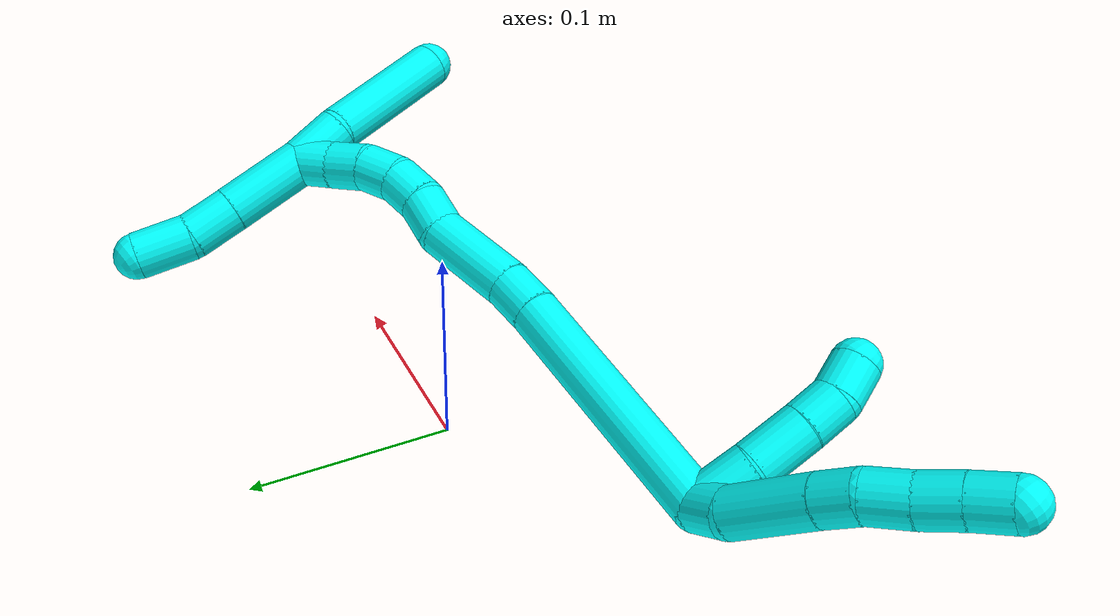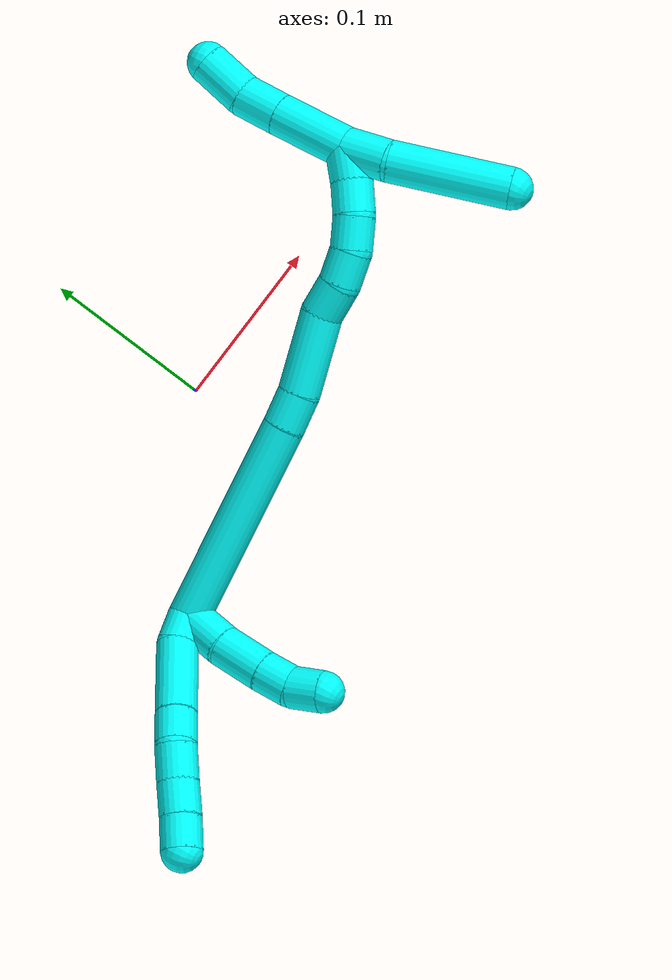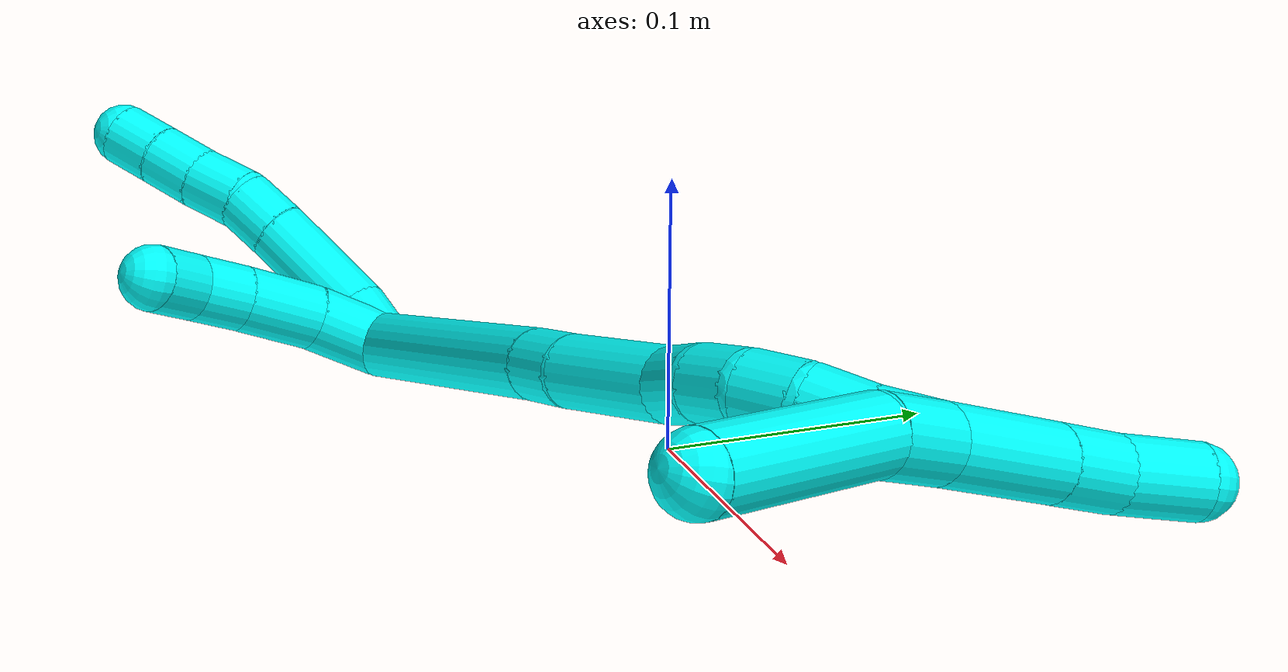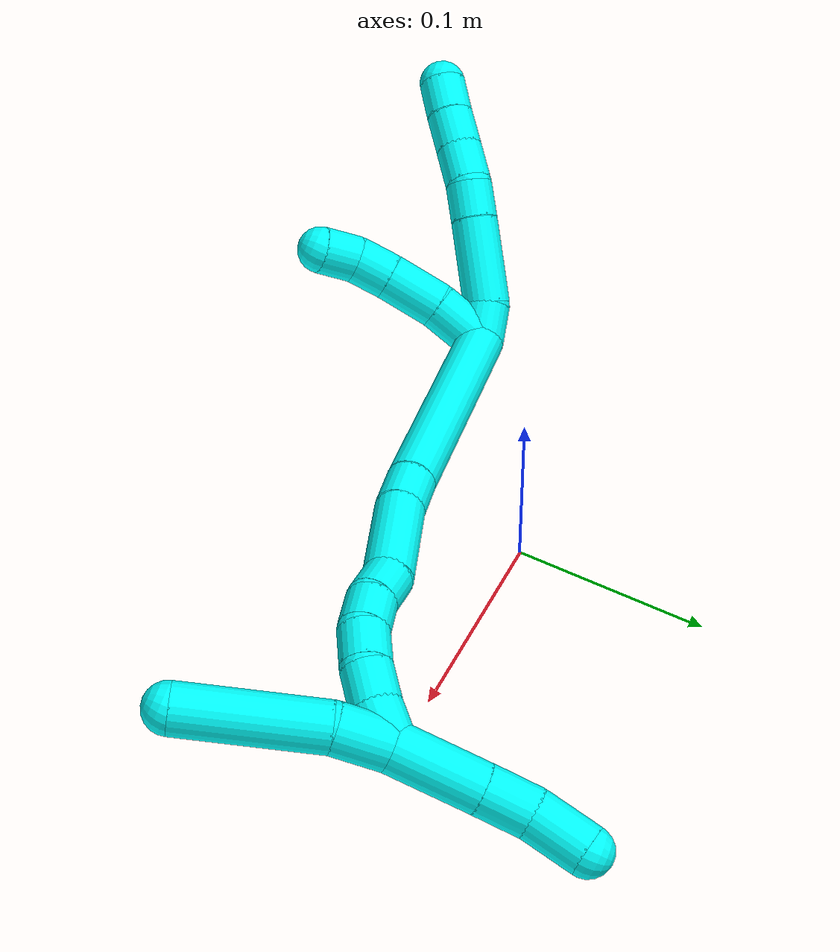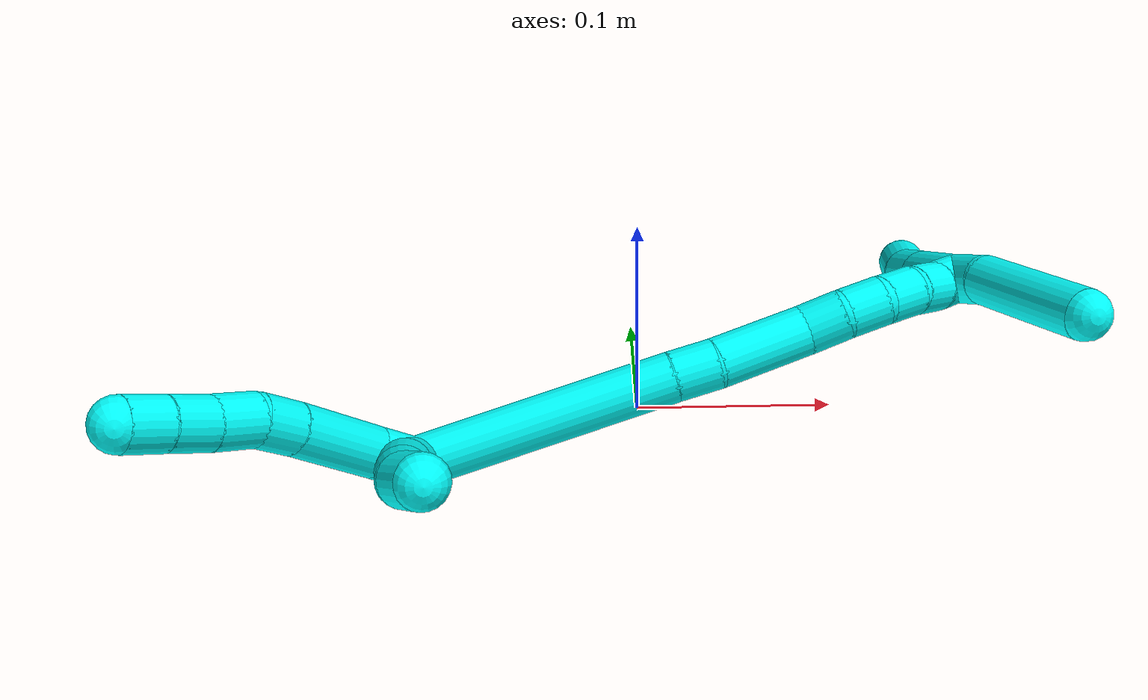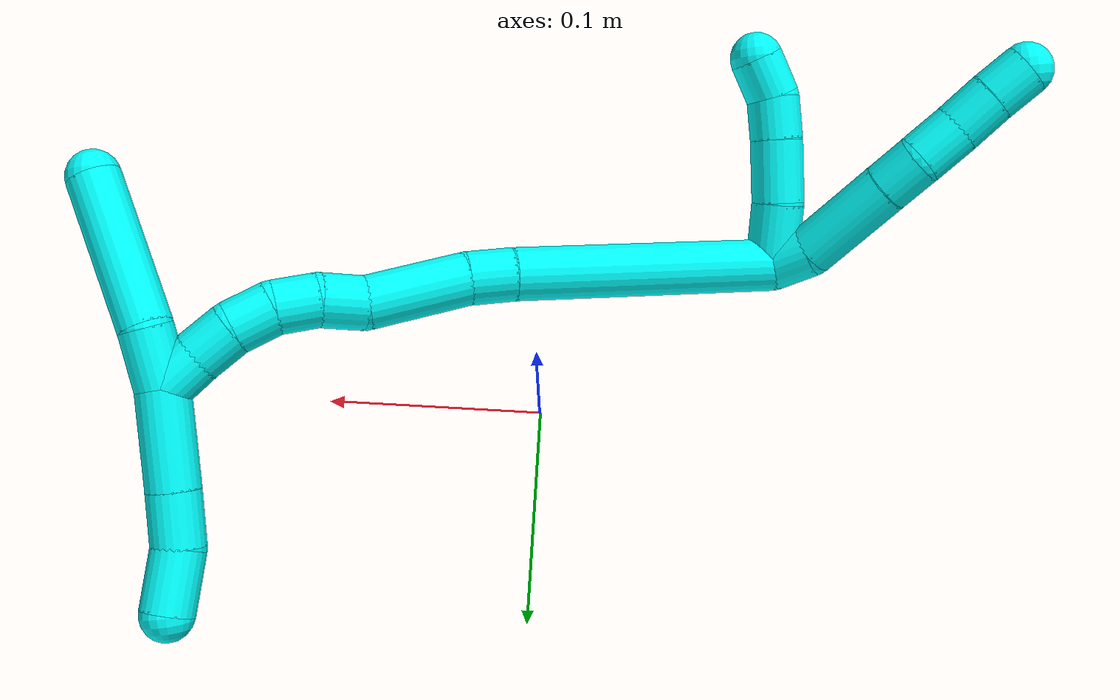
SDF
<sdf version="1.7">
 <world name="default">
  <model name="3">
   <static>0</static>
   <link name="3">
    <collision name="collision-cylinder-e_1_2_8">
     <pose>-0.009497 0.002555 0.002246 -0.84968 -1.22678 0.616632</pose>
     <geometry><cylinder><radius>0.0125</radius><length>0.020176</length></cylinder></geometry>
     <surface>
      <friction><ode><mu>1.16</mu><mu2>1.16</mu2><slip1>0</slip1><slip2>0</slip2></ode></friction>
      <contact><ode><kp>1e+06</kp><kd>1</kd><max_vel>0</max_vel><min_depth>0.001</min_depth></ode></contact>
     </surface>
    </collision>
    <visual name="visual-cylinder-e_1_2_8">
     <pose>-0.009497 0.002555 0.002246 -0.84968 -1.22678 0.616632</pose>
     <geometry><cylinder><radius>0.0125</radius><length>0.020176</length></cylinder></geometry>
     <material><ambient>0.003922 1 0.996078 1</ambient></material>
    </visual>
    <collision name="collision-cylinder-e_2_8_9">
     <pose>-0.037769 0.011627 0.016655 -0.491841 -0.93705 0.252715</pose>
     <geometry><cylinder><radius>0.0125</radius><length>0.046601</length></cylinder></geometry>
     <surface>
      <friction><ode><mu>1.16</mu><mu2>1.16</mu2><slip1>0</slip1><slip2>0</slip2></ode></friction>
      <contact><ode><kp>1e+06</kp><kd>1</kd><max_vel>0</max_vel><min_depth>0.001</min_depth></ode></contact>
     </surface>
    </collision>
    <visual name="visual-cylinder-e_2_8_9">
     <pose>-0.037769 0.011627 0.016655 -0.491841 -0.93705 0.252715</pose>
     <geometry><cylinder><radius>0.0125</radius><length>0.046601</length></cylinder></geometry>
     <material><ambient>0.003922 1 0.996078 1</ambient></material>
    </visual>
    <collision name="collision-cylinder-e_3_9_10">
     <pose>-0.064732 0.020508 0.034068 -0.423231 -0.957745 0.222154</pose>
     <geometry><cylinder><radius>0.0125</radius><length>0.02002</length></cylinder></geometry>
     <surface>
      <friction><ode><mu>1.16</mu><mu2>1.16</mu2><slip1>0</slip1><slip2>0</slip2></ode></friction>
      <contact><ode><kp>1e+06</kp><kd>1</kd><max_vel>0</max_vel><min_depth>0.001</min_depth></ode></contact>
     </surface>
    </collision>
    <visual name="visual-cylinder-e_3_9_10">
     <pose>-0.064732 0.020508 0.034068 -0.423231 -0.957745 0.222154</pose>
     <geometry><cylinder><radius>0.0125</radius><length>0.02002</length></cylinder></geometry>
     <material><ambient>0.003922 1 0.996078 1</ambient></material>
    </visual>
    <collision name="collision-cylinder-e_4_10_11">
     <pose>-0.082156 0.02249 0.045315 0.063866 -0.994089 -0.034654</pose>
     <geometry><cylinder><radius>0.0125</radius><length>0.022037</length></cylinder></geometry>
     <surface>
      <friction><ode><mu>1.16</mu><mu2>1.16</mu2><slip1>0</slip1><slip2>0</slip2></ode></friction>
      <contact><ode><kp>1e+06</kp><kd>1</kd><max_vel>0</max_vel><min_depth>0.001</min_depth></ode></contact>
     </surface>
    </collision>
    <visual name="visual-cylinder-e_4_10_11">
     <pose>-0.082156 0.02249 0.045315 0.063866 -0.994089 -0.034654</pose>
     <geometry><cylinder><radius>0.0125</radius><length>0.022037</length></cylinder></geometry>
     <material><ambient>0.003922 1 0.996078 1</ambient></material>
    </visual>
    <collision name="collision-cylinder-e_5_11_12">
     <pose>-0.099985 0.022523 0.057339 -0.068882 -0.957984 0.035783</pose>
     <geometry><cylinder><radius>0.0125</radius><length>0.021009</length></cylinder></geometry>
     <surface>
      <friction><ode><mu>1.16</mu><mu2>1.16</mu2><slip1>0</slip1><slip2>0</slip2></ode></friction>
      <contact><ode><kp>1e+06</kp><kd>1</kd><max_vel>0</max_vel><min_depth>0.001</min_depth></ode></contact>
     </surface>
    </collision>
    <visual name="visual-cylinder-e_5_11_12">
     <pose>-0.099985 0.022523 0.057339 -0.068882 -0.957984 0.035783</pose>
     <geometry><cylinder><radius>0.0125</radius><length>0.021009</length></cylinder></geometry>
     <material><ambient>0.003922 1 0.996078 1</ambient></material>
    </visual>
    <collision name="collision-cylinder-e_6_12_6">
     <pose>-0.117107 0.023104 0.068735 -0.030817 -1.00875 0.017012</pose>
     <geometry><cylinder><radius>0.0125</radius><length>0.020158</length></cylinder></geometry>
     <surface>
      <friction><ode><mu>1.16</mu><mu2>1.16</mu2><slip1>0</slip1><slip2>0</slip2></ode></friction>
      <contact><ode><kp>1e+06</kp><kd>1</kd><max_vel>0</max_vel><min_depth>0.001</min_depth></ode></contact>
     </surface>
    </collision>
    <visual name="visual-cylinder-e_6_12_6">
     <pose>-0.117107 0.023104 0.068735 -0.030817 -1.00875 0.017012</pose>
     <geometry><cylinder><radius>0.0125</radius><length>0.020158</length></cylinder></geometry>
     <material><ambient>0.003922 1 0.996078 1</ambient></material>
    </visual>
    <collision name="collision-cylinder-e_1_2_13">
     <pose>-0.003284 0.002134 0.014459 -0.146528 -0.221019 0.016288</pose>
     <geometry><cylinder><radius>0.0125</radius><length>0.02996</length></cylinder></geometry>
     <surface>
      <friction><ode><mu>1.16</mu><mu2>1.16</mu2><slip1>0</slip1><slip2>0</slip2></ode></friction>
      <contact><ode><kp>1e+06</kp><kd>1</kd><max_vel>0</max_vel><min_depth>0.001</min_depth></ode></contact>
     </surface>
    </collision>
    <visual name="visual-cylinder-e_1_2_13">
     <pose>-0.003284 0.002134 0.014459 -0.146528 -0.221019 0.016288</pose>
     <geometry><cylinder><radius>0.0125</radius><length>0.02996</length></cylinder></geometry>
     <material><ambient>0.003922 1 0.996078 1</ambient></material>
    </visual>
    <collision name="collision-cylinder-e_2_13_14">
     <pose>-0.008012 0.005271 0.043764 -0.067498 -0.096736 0.003269</pose>
     <geometry><cylinder><radius>0.0125</radius><length>0.0299</length></cylinder></geometry>
     <surface>
      <friction><ode><mu>1.16</mu><mu2>1.16</mu2><slip1>0</slip1><slip2>0</slip2></ode></friction>
      <contact><ode><kp>1e+06</kp><kd>1</kd><max_vel>0</max_vel><min_depth>0.001</min_depth></ode></contact>
     </surface>
    </collision>
    <visual name="visual-cylinder-e_2_13_14">
     <pose>-0.008012 0.005271 0.043764 -0.067498 -0.096736 0.003269</pose>
     <geometry><cylinder><radius>0.0125</radius><length>0.0299</length></cylinder></geometry>
     <material><ambient>0.003922 1 0.996078 1</ambient></material>
    </visual>
    <collision name="collision-cylinder-e_3_14_15">
     <pose>-0.009822 0.006829 0.068658 -0.055046 -0.036408 0.001002</pose>
     <geometry><cylinder><radius>0.0125</radius><length>0.020139</length></cylinder></geometry>
     <surface>
      <friction><ode><mu>1.16</mu><mu2>1.16</mu2><slip1>0</slip1><slip2>0</slip2></ode></friction>
      <contact><ode><kp>1e+06</kp><kd>1</kd><max_vel>0</max_vel><min_depth>0.001</min_depth></ode></contact>
     </surface>
    </collision>
    <visual name="visual-cylinder-e_3_14_15">
     <pose>-0.009822 0.006829 0.068658 -0.055046 -0.036408 0.001002</pose>
     <geometry><cylinder><radius>0.0125</radius><length>0.020139</length></cylinder></geometry>
     <material><ambient>0.003922 1 0.996078 1</ambient></material>
    </visual>
    <collision name="collision-cylinder-e_4_15_5">
     <pose>-0.00742 0.00903 0.088173 -0.172345 0.280569 -0.024396</pose>
     <geometry><cylinder><radius>0.0125</radius><length>0.020001</length></cylinder></geometry>
     <surface>
      <friction><ode><mu>1.16</mu><mu2>1.16</mu2><slip1>0</slip1><slip2>0</slip2></ode></friction>
      <contact><ode><kp>1e+06</kp><kd>1</kd><max_vel>0</max_vel><min_depth>0.001</min_depth></ode></contact>
     </surface>
    </collision>
    <visual name="visual-cylinder-e_4_15_5">
     <pose>-0.00742 0.00903 0.088173 -0.172345 0.280569 -0.024396</pose>
     <geometry><cylinder><radius>0.0125</radius><length>0.020001</length></cylinder></geometry>
     <material><ambient>0.003922 1 0.996078 1</ambient></material>
    </visual>
    <collision name="collision-cylinder-e_1_2_16">
     <pose>0.058891 0.025031 0.005067 -1.37108 1.16161 -0.98527</pose>
     <geometry><cylinder><radius>0.0125</radius><length>0.12838</length></cylinder></geometry>
     <surface>
      <friction><ode><mu>1.16</mu><mu2>1.16</mu2><slip1>0</slip1><slip2>0</slip2></ode></friction>
      <contact><ode><kp>1e+06</kp><kd>1</kd><max_vel>0</max_vel><min_depth>0.001</min_depth></ode></contact>
     </surface>
    </collision>
    <visual name="visual-cylinder-e_1_2_16">
     <pose>0.058891 0.025031 0.005067 -1.37108 1.16161 -0.98527</pose>
     <geometry><cylinder><radius>0.0125</radius><length>0.12838</length></cylinder></geometry>
     <material><ambient>0.003922 1 0.996078 1</ambient></material>
    </visual>
    <collision name="collision-cylinder-e_2_16_17">
     <pose>0.127927 0.053965 0.010422 -1.49714 1.20272 -1.13489</pose>
     <geometry><cylinder><radius>0.0125</radius><length>0.021748</length></cylinder></geometry>
     <surface>
      <friction><ode><mu>1.16</mu><mu2>1.16</mu2><slip1>0</slip1><slip2>0</slip2></ode></friction>
      <contact><ode><kp>1e+06</kp><kd>1</kd><max_vel>0</max_vel><min_depth>0.001</min_depth></ode></contact>
     </surface>
    </collision>
    <visual name="visual-cylinder-e_2_16_17">
     <pose>0.127927 0.053965 0.010422 -1.49714 1.20272 -1.13489</pose>
     <geometry><cylinder><radius>0.0125</radius><length>0.021748</length></cylinder></geometry>
     <material><ambient>0.003922 1 0.996078 1</ambient></material>
    </visual>
    <collision name="collision-cylinder-e_3_17_18">
     <pose>0.160202 0.06718 0.007963 -1.85754 1.15734 -1.4362</pose>
     <geometry><cylinder><radius>0.0125</radius><length>0.048331</length></cylinder></geometry>
     <surface>
      <friction><ode><mu>1.16</mu><mu2>1.16</mu2><slip1>0</slip1><slip2>0</slip2></ode></friction>
      <contact><ode><kp>1e+06</kp><kd>1</kd><max_vel>0</max_vel><min_depth>0.001</min_depth></ode></contact>
     </surface>
    </collision>
    <visual name="visual-cylinder-e_3_17_18">
     <pose>0.160202 0.06718 0.007963 -1.85754 1.15734 -1.4362</pose>
     <geometry><cylinder><radius>0.0125</radius><length>0.048331</length></cylinder></geometry>
     <material><ambient>0.003922 1 0.996078 1</ambient></material>
    </visual>
    <collision name="collision-cylinder-e_4_18_19">
     <pose>0.191516 0.081395 0.007129 -1.19907 1.05049 -0.754268</pose>
     <geometry><cylinder><radius>0.0125</radius><length>0.021171</length></cylinder></geometry>
     <surface>
      <friction><ode><mu>1.16</mu><mu2>1.16</mu2><slip1>0</slip1><slip2>0</slip2></ode></friction>
      <contact><ode><kp>1e+06</kp><kd>1</kd><max_vel>0</max_vel><min_depth>0.001</min_depth></ode></contact>
     </surface>
    </collision>
    <visual name="visual-cylinder-e_4_18_19">
     <pose>0.191516 0.081395 0.007129 -1.19907 1.05049 -0.754268</pose>
     <geometry><cylinder><radius>0.0125</radius><length>0.021171</length></cylinder></geometry>
     <material><ambient>0.003922 1 0.996078 1</ambient></material>
    </visual>
    <collision name="collision-cylinder-e_5_19_20">
     <pose>0.210041 0.090246 0.008513 -1.70357 1.16778 -1.2932</pose>
     <geometry><cylinder><radius>0.0125</radius><length>0.020309</length></cylinder></geometry>
     <surface>
      <friction><ode><mu>1.16</mu><mu2>1.16</mu2><slip1>0</slip1><slip2>0</slip2></ode></friction>
      <contact><ode><kp>1e+06</kp><kd>1</kd><max_vel>0</max_vel><min_depth>0.001</min_depth></ode></contact>
     </surface>
    </collision>
    <visual name="visual-cylinder-e_5_19_20">
     <pose>0.210041 0.090246 0.008513 -1.70357 1.16778 -1.2932</pose>
     <geometry><cylinder><radius>0.0125</radius><length>0.020309</length></cylinder></geometry>
     <material><ambient>0.003922 1 0.996078 1</ambient></material>
    </visual>
    <collision name="collision-cylinder-e_6_20_21">
     <pose>0.228346 0.09709 0.004605 -2.43311 1.10982 -2.06571</pose>
     <geometry><cylinder><radius>0.0125</radius><length>0.020018</length></cylinder></geometry>
     <surface>
      <friction><ode><mu>1.16</mu><mu2>1.16</mu2><slip1>0</slip1><slip2>0</slip2></ode></friction>
      <contact><ode><kp>1e+06</kp><kd>1</kd><max_vel>0</max_vel><min_depth>0.001</min_depth></ode></contact>
     </surface>
    </collision>
    <visual name="visual-cylinder-e_6_20_21">
     <pose>0.228346 0.09709 0.004605 -2.43311 1.10982 -2.06571</pose>
     <geometry><cylinder><radius>0.0125</radius><length>0.020018</length></cylinder></geometry>
     <material><ambient>0.003922 1 0.996078 1</ambient></material>
    </visual>
    <collision name="collision-cylinder-e_7_21_22">
     <pose>0.245701 0.101302 -0.004073 -2.89837 0.994032 -2.69838</pose>
     <geometry><cylinder><radius>0.0125</radius><length>0.020019</length></cylinder></geometry>
     <surface>
      <friction><ode><mu>1.16</mu><mu2>1.16</mu2><slip1>0</slip1><slip2>0</slip2></ode></friction>
      <contact><ode><kp>1e+06</kp><kd>1</kd><max_vel>0</max_vel><min_depth>0.001</min_depth></ode></contact>
     </surface>
    </collision>
    <visual name="visual-cylinder-e_7_21_22">
     <pose>0.245701 0.101302 -0.004073 -2.89837 0.994032 -2.69838</pose>
     <geometry><cylinder><radius>0.0125</radius><length>0.020019</length></cylinder></geometry>
     <material><ambient>0.003922 1 0.996078 1</ambient></material>
    </visual>
    <collision name="collision-cylinder-e_8_22_1">
     <pose>0.261897 0.104817 -0.015242 -2.78293 0.894083 -2.41857</pose>
     <geometry><cylinder><radius>0.0125</radius><length>0.020024</length></cylinder></geometry>
     <surface>
      <friction><ode><mu>1.16</mu><mu2>1.16</mu2><slip1>0</slip1><slip2>0</slip2></ode></friction>
      <contact><ode><kp>1e+06</kp><kd>1</kd><max_vel>0</max_vel><min_depth>0.001</min_depth></ode></contact>
     </surface>
    </collision>
    <visual name="visual-cylinder-e_8_22_1">
     <pose>0.261897 0.104817 -0.015242 -2.78293 0.894083 -2.41857</pose>
     <geometry><cylinder><radius>0.0125</radius><length>0.020024</length></cylinder></geometry>
     <material><ambient>0.003922 1 0.996078 1</ambient></material>
    </visual>
    <collision name="collision-cylinder-e_1_1_23">
     <pose>0.270317 0.106765 -0.043713 3.1304 0.027162 2.35992</pose>
     <geometry><cylinder><radius>0.0125</radius><length>0.04522</length></cylinder></geometry>
     <surface>
      <friction><ode><mu>1.16</mu><mu2>1.16</mu2><slip1>0</slip1><slip2>0</slip2></ode></friction>
      <contact><ode><kp>1e+06</kp><kd>1</kd><max_vel>0</max_vel><min_depth>0.001</min_depth></ode></contact>
     </surface>
    </collision>
    <visual name="visual-cylinder-e_1_1_23">
     <pose>0.270317 0.106765 -0.043713 3.1304 0.027162 2.35992</pose>
     <geometry><cylinder><radius>0.0125</radius><length>0.04522</length></cylinder></geometry>
     <material><ambient>0.003922 1 0.996078 1</ambient></material>
    </visual>
    <collision name="collision-cylinder-e_2_23_24">
     <pose>0.271478 0.106419 -0.079012 3.13426 0.043054 2.80424</pose>
     <geometry><cylinder><radius>0.0125</radius><length>0.025422</length></cylinder></geometry>
     <surface>
      <friction><ode><mu>1.16</mu><mu2>1.16</mu2><slip1>0</slip1><slip2>0</slip2></ode></friction>
      <contact><ode><kp>1e+06</kp><kd>1</kd><max_vel>0</max_vel><min_depth>0.001</min_depth></ode></contact>
     </surface>
    </collision>
    <visual name="visual-cylinder-e_2_23_24">
     <pose>0.271478 0.106419 -0.079012 3.13426 0.043054 2.80424</pose>
     <geometry><cylinder><radius>0.0125</radius><length>0.025422</length></cylinder></geometry>
     <material><ambient>0.003922 1 0.996078 1</ambient></material>
    </visual>
    <collision name="collision-cylinder-e_3_24_4">
     <pose>0.275776 0.108569 -0.105724 -2.98289 0.258414 -2.04318</pose>
     <geometry><cylinder><radius>0.0125</radius><length>0.029359</length></cylinder></geometry>
     <surface>
      <friction><ode><mu>1.16</mu><mu2>1.16</mu2><slip1>0</slip1><slip2>0</slip2></ode></friction>
      <contact><ode><kp>1e+06</kp><kd>1</kd><max_vel>0</max_vel><min_depth>0.001</min_depth></ode></contact>
     </surface>
    </collision>
    <visual name="visual-cylinder-e_3_24_4">
     <pose>0.275776 0.108569 -0.105724 -2.98289 0.258414 -2.04318</pose>
     <geometry><cylinder><radius>0.0125</radius><length>0.029359</length></cylinder></geometry>
     <material><ambient>0.003922 1 0.996078 1</ambient></material>
    </visual>
    <collision name="collision-cylinder-e_1_1_25">
     <pose>0.271483 0.10778 -0.00755 -0.056077 0.130309 -0.00366</pose>
     <geometry><cylinder><radius>0.0125</radius><length>0.0274</length></cylinder></geometry>
     <surface>
      <friction><ode><mu>1.16</mu><mu2>1.16</mu2><slip1>0</slip1><slip2>0</slip2></ode></friction>
      <contact><ode><kp>1e+06</kp><kd>1</kd><max_vel>0</max_vel><min_depth>0.001</min_depth></ode></contact>
     </surface>
    </collision>
    <visual name="visual-cylinder-e_1_1_25">
     <pose>0.271483 0.10778 -0.00755 -0.056077 0.130309 -0.00366</pose>
     <geometry><cylinder><radius>0.0125</radius><length>0.0274</length></cylinder></geometry>
     <material><ambient>0.003922 1 0.996078 1</ambient></material>
    </visual>
    <collision name="collision-cylinder-e_2_25_3">
     <pose>0.282517 0.103746 0.040784 0.137027 0.257754 0.017785</pose>
     <geometry><cylinder><radius>0.0125</radius><length>0.0726</length></cylinder></geometry>
     <surface>
      <friction><ode><mu>1.16</mu><mu2>1.16</mu2><slip1>0</slip1><slip2>0</slip2></ode></friction>
      <contact><ode><kp>1e+06</kp><kd>1</kd><max_vel>0</max_vel><min_depth>0.001</min_depth></ode></contact>
     </surface>
    </collision>
    <visual name="visual-cylinder-e_2_25_3">
     <pose>0.282517 0.103746 0.040784 0.137027 0.257754 0.017785</pose>
     <geometry><cylinder><radius>0.0125</radius><length>0.0726</length></cylinder></geometry>
     <material><ambient>0.003922 1 0.996078 1</ambient></material>
    </visual>
    <collision name="collision-sphere-3">
     <pose>0.29177 0.098951 0.075556 0 -0 0</pose>
     <geometry><sphere><radius>0.0125</radius></sphere></geometry>
     <surface>
      <friction><ode><mu>1.16</mu><mu2>1.16</mu2><slip1>0</slip1><slip2>0</slip2></ode></friction>
      <contact><ode><kp>1e+06</kp><kd>1</kd><max_vel>0</max_vel><min_depth>0.001</min_depth></ode></contact>
     </surface>
    </collision>
    <visual name="visual-sphere-3">
     <pose>0.29177 0.098951 0.075556 0 -0 0</pose>
     <geometry><sphere><radius>0.0125</radius></sphere></geometry>
     <material><ambient>0.003922 1 0.996078 1</ambient></material>
    </visual>
    <collision name="collision-sphere-25">
     <pose>0.273263 0.108541 0.006012 0 -0 0</pose>
     <geometry><sphere><radius>0.0125</radius></sphere></geometry>
     <surface>
      <friction><ode><mu>1.16</mu><mu2>1.16</mu2><slip1>0</slip1><slip2>0</slip2></ode></friction>
      <contact><ode><kp>1e+06</kp><kd>1</kd><max_vel>0</max_vel><min_depth>0.001</min_depth></ode></contact>
     </surface>
    </collision>
    <visual name="visual-sphere-25">
     <pose>0.273263 0.108541 0.006012 0 -0 0</pose>
     <geometry><sphere><radius>0.0125</radius></sphere></geometry>
     <material><ambient>0.003922 1 0.996078 1</ambient></material>
    </visual>
    <collision name="collision-sphere-4">
     <pose>0.279528 0.110812 -0.119738 0 -0 0</pose>
     <geometry><sphere><radius>0.0125</radius></sphere></geometry>
     <surface>
      <friction><ode><mu>1.16</mu><mu2>1.16</mu2><slip1>0</slip1><slip2>0</slip2></ode></friction>
      <contact><ode><kp>1e+06</kp><kd>1</kd><max_vel>0</max_vel><min_depth>0.001</min_depth></ode></contact>
     </surface>
    </collision>
    <visual name="visual-sphere-4">
     <pose>0.279528 0.110812 -0.119738 0 -0 0</pose>
     <geometry><sphere><radius>0.0125</radius></sphere></geometry>
     <material><ambient>0.003922 1 0.996078 1</ambient></material>
    </visual>
    <collision name="collision-sphere-24">
     <pose>0.272025 0.106326 -0.09171 0 -0 0</pose>
     <geometry><sphere><radius>0.0125</radius></sphere></geometry>
     <surface>
      <friction><ode><mu>1.16</mu><mu2>1.16</mu2><slip1>0</slip1><slip2>0</slip2></ode></friction>
      <contact><ode><kp>1e+06</kp><kd>1</kd><max_vel>0</max_vel><min_depth>0.001</min_depth></ode></contact>
     </surface>
    </collision>
    <visual name="visual-sphere-24">
     <pose>0.272025 0.106326 -0.09171 0 -0 0</pose>
     <geometry><sphere><radius>0.0125</radius></sphere></geometry>
     <material><ambient>0.003922 1 0.996078 1</ambient></material>
    </visual>
    <collision name="collision-sphere-23">
     <pose>0.270931 0.106512 -0.066313 0 -0 0</pose>
     <geometry><sphere><radius>0.0125</radius></sphere></geometry>
     <surface>
      <friction><ode><mu>1.16</mu><mu2>1.16</mu2><slip1>0</slip1><slip2>0</slip2></ode></friction>
      <contact><ode><kp>1e+06</kp><kd>1</kd><max_vel>0</max_vel><min_depth>0.001</min_depth></ode></contact>
     </surface>
    </collision>
    <visual name="visual-sphere-23">
     <pose>0.270931 0.106512 -0.066313 0 -0 0</pose>
     <geometry><sphere><radius>0.0125</radius></sphere></geometry>
     <material><ambient>0.003922 1 0.996078 1</ambient></material>
    </visual>
    <collision name="collision-sphere-1">
     <pose>0.269703 0.107018 -0.021113 0 -0 0</pose>
     <geometry><sphere><radius>0.0125</radius></sphere></geometry>
     <surface>
      <friction><ode><mu>1.16</mu><mu2>1.16</mu2><slip1>0</slip1><slip2>0</slip2></ode></friction>
      <contact><ode><kp>1e+06</kp><kd>1</kd><max_vel>0</max_vel><min_depth>0.001</min_depth></ode></contact>
     </surface>
    </collision>
    <visual name="visual-sphere-1">
     <pose>0.269703 0.107018 -0.021113 0 -0 0</pose>
     <geometry><sphere><radius>0.0125</radius></sphere></geometry>
     <material><ambient>0.003922 1 0.996078 1</ambient></material>
    </visual>
    <collision name="collision-sphere-22">
     <pose>0.254091 0.102616 -0.009371 0 -0 0</pose>
     <geometry><sphere><radius>0.0125</radius></sphere></geometry>
     <surface>
      <friction><ode><mu>1.16</mu><mu2>1.16</mu2><slip1>0</slip1><slip2>0</slip2></ode></friction>
      <contact><ode><kp>1e+06</kp><kd>1</kd><max_vel>0</max_vel><min_depth>0.001</min_depth></ode></contact>
     </surface>
    </collision>
    <visual name="visual-sphere-22">
     <pose>0.254091 0.102616 -0.009371 0 -0 0</pose>
     <geometry><sphere><radius>0.0125</radius></sphere></geometry>
     <material><ambient>0.003922 1 0.996078 1</ambient></material>
    </visual>
    <collision name="collision-sphere-21">
     <pose>0.237311 0.099987 0.001225 0 -0 0</pose>
     <geometry><sphere><radius>0.0125</radius></sphere></geometry>
     <surface>
      <friction><ode><mu>1.16</mu><mu2>1.16</mu2><slip1>0</slip1><slip2>0</slip2></ode></friction>
      <contact><ode><kp>1e+06</kp><kd>1</kd><max_vel>0</max_vel><min_depth>0.001</min_depth></ode></contact>
     </surface>
    </collision>
    <visual name="visual-sphere-21">
     <pose>0.237311 0.099987 0.001225 0 -0 0</pose>
     <geometry><sphere><radius>0.0125</radius></sphere></geometry>
     <material><ambient>0.003922 1 0.996078 1</ambient></material>
    </visual>
    <collision name="collision-sphere-12">
     <pose>-0.108578 0.022938 0.063366 0 -0 0</pose>
     <geometry><sphere><radius>0.0125</radius></sphere></geometry>
     <surface>
      <friction><ode><mu>1.16</mu><mu2>1.16</mu2><slip1>0</slip1><slip2>0</slip2></ode></friction>
      <contact><ode><kp>1e+06</kp><kd>1</kd><max_vel>0</max_vel><min_depth>0.001</min_depth></ode></contact>
     </surface>
    </collision>
    <visual name="visual-sphere-12">
     <pose>-0.108578 0.022938 0.063366 0 -0 0</pose>
     <geometry><sphere><radius>0.0125</radius></sphere></geometry>
     <material><ambient>0.003922 1 0.996078 1</ambient></material>
    </visual>
    <collision name="collision-sphere-11">
     <pose>-0.091392 0.022107 0.051311 0 -0 0</pose>
     <geometry><sphere><radius>0.0125</radius></sphere></geometry>
     <surface>
      <friction><ode><mu>1.16</mu><mu2>1.16</mu2><slip1>0</slip1><slip2>0</slip2></ode></friction>
      <contact><ode><kp>1e+06</kp><kd>1</kd><max_vel>0</max_vel><min_depth>0.001</min_depth></ode></contact>
     </surface>
    </collision>
    <visual name="visual-sphere-11">
     <pose>-0.091392 0.022107 0.051311 0 -0 0</pose>
     <geometry><sphere><radius>0.0125</radius></sphere></geometry>
     <material><ambient>0.003922 1 0.996078 1</ambient></material>
    </visual>
    <collision name="collision-sphere-10">
     <pose>-0.07292 0.022874 0.03932 0 -0 0</pose>
     <geometry><sphere><radius>0.0125</radius></sphere></geometry>
     <surface>
      <friction><ode><mu>1.16</mu><mu2>1.16</mu2><slip1>0</slip1><slip2>0</slip2></ode></friction>
      <contact><ode><kp>1e+06</kp><kd>1</kd><max_vel>0</max_vel><min_depth>0.001</min_depth></ode></contact>
     </surface>
    </collision>
    <visual name="visual-sphere-10">
     <pose>-0.07292 0.022874 0.03932 0 -0 0</pose>
     <geometry><sphere><radius>0.0125</radius></sphere></geometry>
     <material><ambient>0.003922 1 0.996078 1</ambient></material>
    </visual>
    <collision name="collision-sphere-9">
     <pose>-0.056545 0.018143 0.028817 0 -0 0</pose>
     <geometry><sphere><radius>0.0125</radius></sphere></geometry>
     <surface>
      <friction><ode><mu>1.16</mu><mu2>1.16</mu2><slip1>0</slip1><slip2>0</slip2></ode></friction>
      <contact><ode><kp>1e+06</kp><kd>1</kd><max_vel>0</max_vel><min_depth>0.001</min_depth></ode></contact>
     </surface>
    </collision>
    <visual name="visual-sphere-9">
     <pose>-0.056545 0.018143 0.028817 0 -0 0</pose>
     <geometry><sphere><radius>0.0125</radius></sphere></geometry>
     <material><ambient>0.003922 1 0.996078 1</ambient></material>
    </visual>
    <collision name="collision-sphere-2">
     <geometry><sphere><radius>0.0125</radius></sphere></geometry>
     <surface>
      <friction><ode><mu>1.16</mu><mu2>1.16</mu2><slip1>0</slip1><slip2>0</slip2></ode></friction>
      <contact><ode><kp>1e+06</kp><kd>1</kd><max_vel>0</max_vel><min_depth>0.001</min_depth></ode></contact>
     </surface>
    </collision>
    <visual name="visual-sphere-2">
     <geometry><sphere><radius>0.0125</radius></sphere></geometry>
     <material><ambient>0.003922 1 0.996078 1</ambient></material>
    </visual>
    <collision name="collision-sphere-19">
     <pose>0.2007 0.086298 0.00904 0 -0 0</pose>
     <geometry><sphere><radius>0.0125</radius></sphere></geometry>
     <surface>
      <friction><ode><mu>1.16</mu><mu2>1.16</mu2><slip1>0</slip1><slip2>0</slip2></ode></friction>
      <contact><ode><kp>1e+06</kp><kd>1</kd><max_vel>0</max_vel><min_depth>0.001</min_depth></ode></contact>
     </surface>
    </collision>
    <visual name="visual-sphere-19">
     <pose>0.2007 0.086298 0.00904 0 -0 0</pose>
     <geometry><sphere><radius>0.0125</radius></sphere></geometry>
     <material><ambient>0.003922 1 0.996078 1</ambient></material>
    </visual>
    <collision name="collision-sphere-8">
     <pose>-0.018994 0.005111 0.004493 0 -0 0</pose>
     <geometry><sphere><radius>0.0125</radius></sphere></geometry>
     <surface>
      <friction><ode><mu>1.16</mu><mu2>1.16</mu2><slip1>0</slip1><slip2>0</slip2></ode></friction>
      <contact><ode><kp>1e+06</kp><kd>1</kd><max_vel>0</max_vel><min_depth>0.001</min_depth></ode></contact>
     </surface>
    </collision>
    <visual name="visual-sphere-8">
     <pose>-0.018994 0.005111 0.004493 0 -0 0</pose>
     <geometry><sphere><radius>0.0125</radius></sphere></geometry>
     <material><ambient>0.003922 1 0.996078 1</ambient></material>
    </visual>
    <collision name="collision-sphere-6">
     <pose>-0.125635 0.023269 0.074103 0 -0 0</pose>
     <geometry><sphere><radius>0.0125</radius></sphere></geometry>
     <surface>
      <friction><ode><mu>1.16</mu><mu2>1.16</mu2><slip1>0</slip1><slip2>0</slip2></ode></friction>
      <contact><ode><kp>1e+06</kp><kd>1</kd><max_vel>0</max_vel><min_depth>0.001</min_depth></ode></contact>
     </surface>
    </collision>
    <visual name="visual-sphere-6">
     <pose>-0.125635 0.023269 0.074103 0 -0 0</pose>
     <geometry><sphere><radius>0.0125</radius></sphere></geometry>
     <material><ambient>0.003922 1 0.996078 1</ambient></material>
    </visual>
    <collision name="collision-sphere-13">
     <pose>-0.006568 0.004268 0.028918 0 -0 0</pose>
     <geometry><sphere><radius>0.0125</radius></sphere></geometry>
     <surface>
      <friction><ode><mu>1.16</mu><mu2>1.16</mu2><slip1>0</slip1><slip2>0</slip2></ode></friction>
      <contact><ode><kp>1e+06</kp><kd>1</kd><max_vel>0</max_vel><min_depth>0.001</min_depth></ode></contact>
     </surface>
    </collision>
    <visual name="visual-sphere-13">
     <pose>-0.006568 0.004268 0.028918 0 -0 0</pose>
     <geometry><sphere><radius>0.0125</radius></sphere></geometry>
     <material><ambient>0.003922 1 0.996078 1</ambient></material>
    </visual>
    <collision name="collision-sphere-14">
     <pose>-0.009456 0.006275 0.058611 0 -0 0</pose>
     <geometry><sphere><radius>0.0125</radius></sphere></geometry>
     <surface>
      <friction><ode><mu>1.16</mu><mu2>1.16</mu2><slip1>0</slip1><slip2>0</slip2></ode></friction>
      <contact><ode><kp>1e+06</kp><kd>1</kd><max_vel>0</max_vel><min_depth>0.001</min_depth></ode></contact>
     </surface>
    </collision>
    <visual name="visual-sphere-14">
     <pose>-0.009456 0.006275 0.058611 0 -0 0</pose>
     <geometry><sphere><radius>0.0125</radius></sphere></geometry>
     <material><ambient>0.003922 1 0.996078 1</ambient></material>
    </visual>
    <collision name="collision-sphere-15">
     <pose>-0.010189 0.007382 0.078706 0 -0 0</pose>
     <geometry><sphere><radius>0.0125</radius></sphere></geometry>
     <surface>
      <friction><ode><mu>1.16</mu><mu2>1.16</mu2><slip1>0</slip1><slip2>0</slip2></ode></friction>
      <contact><ode><kp>1e+06</kp><kd>1</kd><max_vel>0</max_vel><min_depth>0.001</min_depth></ode></contact>
     </surface>
    </collision>
    <visual name="visual-sphere-15">
     <pose>-0.010189 0.007382 0.078706 0 -0 0</pose>
     <geometry><sphere><radius>0.0125</radius></sphere></geometry>
     <material><ambient>0.003922 1 0.996078 1</ambient></material>
    </visual>
    <collision name="collision-sphere-5">
     <pose>-0.004651 0.010678 0.09764 0 -0 0</pose>
     <geometry><sphere><radius>0.0125</radius></sphere></geometry>
     <surface>
      <friction><ode><mu>1.16</mu><mu2>1.16</mu2><slip1>0</slip1><slip2>0</slip2></ode></friction>
      <contact><ode><kp>1e+06</kp><kd>1</kd><max_vel>0</max_vel><min_depth>0.001</min_depth></ode></contact>
     </surface>
    </collision>
    <visual name="visual-sphere-5">
     <pose>-0.004651 0.010678 0.09764 0 -0 0</pose>
     <geometry><sphere><radius>0.0125</radius></sphere></geometry>
     <material><ambient>0.003922 1 0.996078 1</ambient></material>
    </visual>
    <collision name="collision-sphere-16">
     <pose>0.117782 0.050063 0.010134 0 -0 0</pose>
     <geometry><sphere><radius>0.0125</radius></sphere></geometry>
     <surface>
      <friction><ode><mu>1.16</mu><mu2>1.16</mu2><slip1>0</slip1><slip2>0</slip2></ode></friction>
      <contact><ode><kp>1e+06</kp><kd>1</kd><max_vel>0</max_vel><min_depth>0.001</min_depth></ode></contact>
     </surface>
    </collision>
    <visual name="visual-sphere-16">
     <pose>0.117782 0.050063 0.010134 0 -0 0</pose>
     <geometry><sphere><radius>0.0125</radius></sphere></geometry>
     <material><ambient>0.003922 1 0.996078 1</ambient></material>
    </visual>
    <collision name="collision-sphere-17">
     <pose>0.138073 0.057867 0.010709 0 -0 0</pose>
     <geometry><sphere><radius>0.0125</radius></sphere></geometry>
     <surface>
      <friction><ode><mu>1.16</mu><mu2>1.16</mu2><slip1>0</slip1><slip2>0</slip2></ode></friction>
      <contact><ode><kp>1e+06</kp><kd>1</kd><max_vel>0</max_vel><min_depth>0.001</min_depth></ode></contact>
     </surface>
    </collision>
    <visual name="visual-sphere-17">
     <pose>0.138073 0.057867 0.010709 0 -0 0</pose>
     <geometry><sphere><radius>0.0125</radius></sphere></geometry>
     <material><ambient>0.003922 1 0.996078 1</ambient></material>
    </visual>
    <collision name="collision-sphere-18">
     <pose>0.182331 0.076492 0.005217 0 -0 0</pose>
     <geometry><sphere><radius>0.0125</radius></sphere></geometry>
     <surface>
      <friction><ode><mu>1.16</mu><mu2>1.16</mu2><slip1>0</slip1><slip2>0</slip2></ode></friction>
      <contact><ode><kp>1e+06</kp><kd>1</kd><max_vel>0</max_vel><min_depth>0.001</min_depth></ode></contact>
     </surface>
    </collision>
    <visual name="visual-sphere-18">
     <pose>0.182331 0.076492 0.005217 0 -0 0</pose>
     <geometry><sphere><radius>0.0125</radius></sphere></geometry>
     <material><ambient>0.003922 1 0.996078 1</ambient></material>
    </visual>
    <collision name="collision-sphere-20">
     <pose>0.219382 0.094193 0.007986 0 -0 0</pose>
     <geometry><sphere><radius>0.0125</radius></sphere></geometry>
     <surface>
      <friction><ode><mu>1.16</mu><mu2>1.16</mu2><slip1>0</slip1><slip2>0</slip2></ode></friction>
      <contact><ode><kp>1e+06</kp><kd>1</kd><max_vel>0</max_vel><min_depth>0.001</min_depth></ode></contact>
     </surface>
    </collision>
    <visual name="visual-sphere-20">
     <pose>0.219382 0.094193 0.007986 0 -0 0</pose>
     <geometry><sphere><radius>0.0125</radius></sphere></geometry>
     <material><ambient>0.003922 1 0.996078 1</ambient></material>
    </visual>
    <inertial>
     <pose>0.114809 0.055259 0.009248 0 -0 0</pose>
     <mass>0.75</mass>
     <inertia>
      <ixx>3.8e-05</ixx>
      <ixy>0</ixy>
      <ixz>0</ixz>
      <iyy>0.000198</iyy>
      <iyz>0</iyz>
      <izz>-0.000246</izz>
     </inertia>
    </inertial>
   </link>
   <pose>-0.107275 -0.076604 0.012435 1.2476 0.155324 0.135119</pose>
  </model>
 </world>
</sdf>
